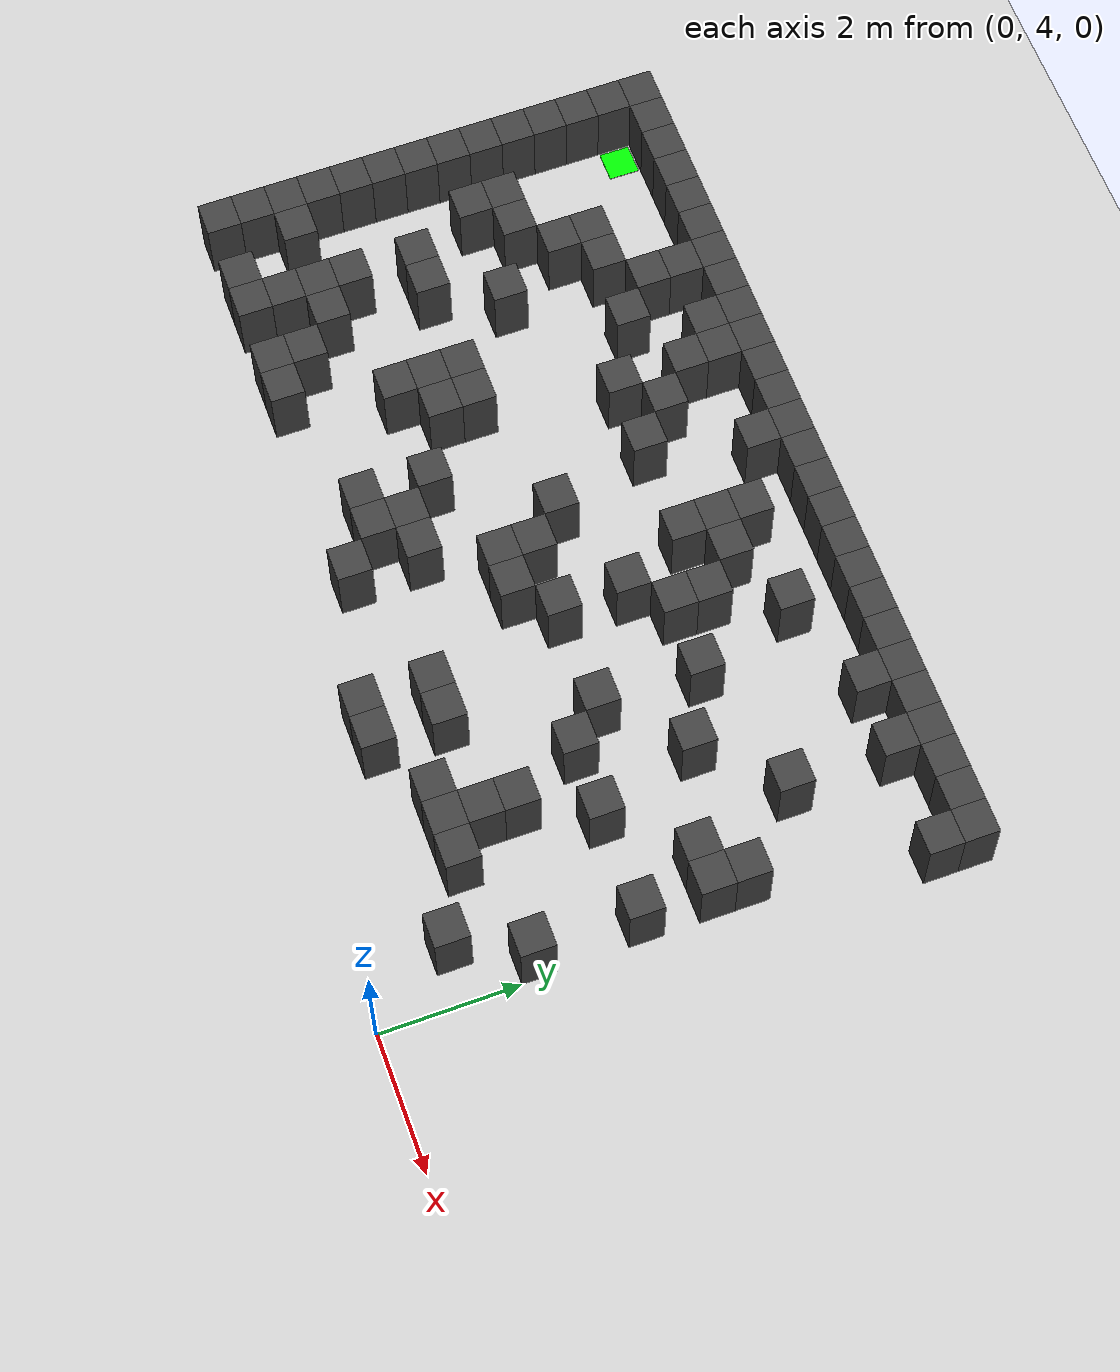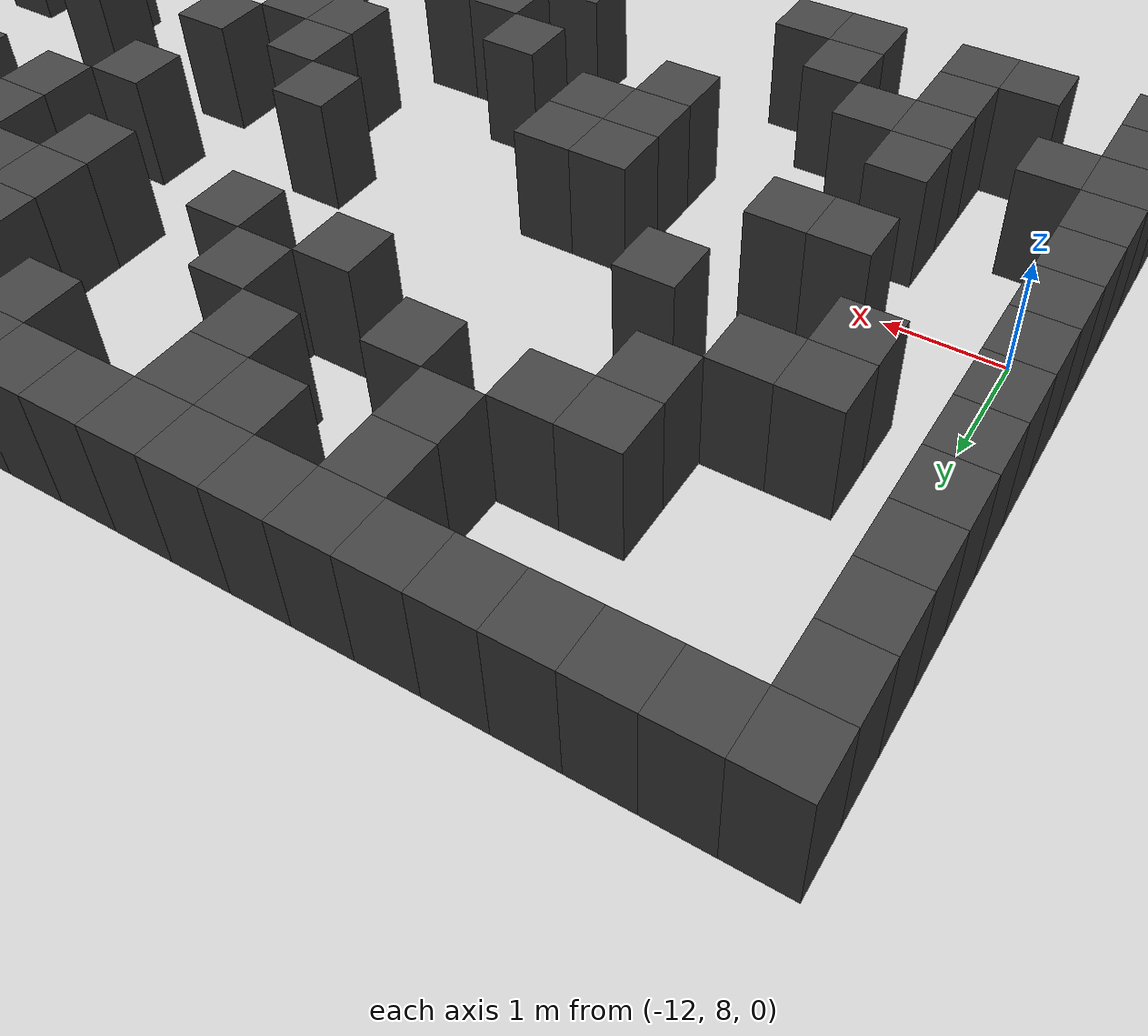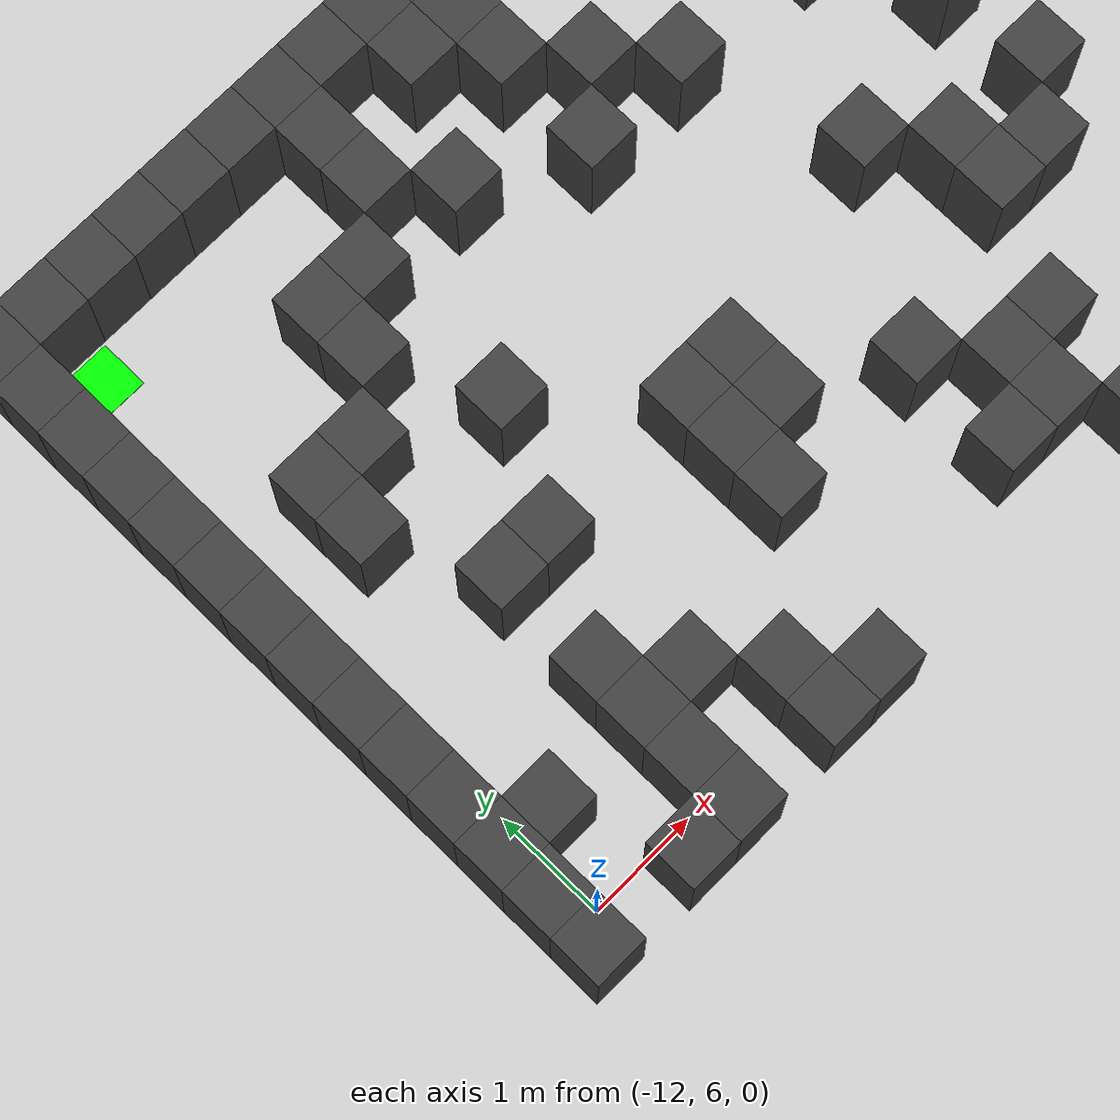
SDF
<sdf version="1.7">
 <world name="map_4581">
  <model name="ground_plane">
   <static>true</static>
   <link name="link">
    <collision name="collision">
     <geometry><plane><normal>0 0 1</normal><size>200 200</size></plane></geometry>
    </collision>
    <visual name="visual">
     <geometry><plane><normal>0 0 1</normal><size>200 200</size></plane></geometry>
     <material><ambient>0.8 0.8 0.8 1</ambient><diffuse>0.8 0.8 0.8 1</diffuse></material>
    </visual>
   </link>
  </model>
  <model name="maze_environment">
   <static>true</static>
   <link name="wall_0">
    <pose>-12.250 12.250 0.500 0 0 0</pose>
    <collision name="col"><geometry><box><size>0.5 0.5 1.0</size></box></geometry></collision>
    <visual name="vis">
     <geometry><box><size>0.5 0.5 1.0</size></box></geometry>
     <material><ambient>0.15 0.15 0.15 1</ambient><diffuse>0.25 0.25 0.25 1</diffuse></material>
    </visual>
   </link>
   <link name="wall_1">
    <pose>-11.750 12.250 0.500 0 0 0</pose>
    <collision name="col"><geometry><box><size>0.5 0.5 1.0</size></box></geometry></collision>
    <visual name="vis">
     <geometry><box><size>0.5 0.5 1.0</size></box></geometry>
     <material><ambient>0.15 0.15 0.15 1</ambient><diffuse>0.25 0.25 0.25 1</diffuse></material>
    </visual>
   </link>
   <link name="wall_2">
    <pose>-11.250 12.250 0.500 0 0 0</pose>
    <collision name="col"><geometry><box><size>0.5 0.5 1.0</size></box></geometry></collision>
    <visual name="vis">
     <geometry><box><size>0.5 0.5 1.0</size></box></geometry>
     <material><ambient>0.15 0.15 0.15 1</ambient><diffuse>0.25 0.25 0.25 1</diffuse></material>
    </visual>
   </link>
   <link name="wall_3">
    <pose>-10.750 12.250 0.500 0 0 0</pose>
    <collision name="col"><geometry><box><size>0.5 0.5 1.0</size></box></geometry></collision>
    <visual name="vis">
     <geometry><box><size>0.5 0.5 1.0</size></box></geometry>
     <material><ambient>0.15 0.15 0.15 1</ambient><diffuse>0.25 0.25 0.25 1</diffuse></material>
    </visual>
   </link>
   <link name="wall_4">
    <pose>-10.250 12.250 0.500 0 0 0</pose>
    <collision name="col"><geometry><box><size>0.5 0.5 1.0</size></box></geometry></collision>
    <visual name="vis">
     <geometry><box><size>0.5 0.5 1.0</size></box></geometry>
     <material><ambient>0.15 0.15 0.15 1</ambient><diffuse>0.25 0.25 0.25 1</diffuse></material>
    </visual>
   </link>
   <link name="wall_5">
    <pose>-9.750 12.250 0.500 0 0 0</pose>
    <collision name="col"><geometry><box><size>0.5 0.5 1.0</size></box></geometry></collision>
    <visual name="vis">
     <geometry><box><size>0.5 0.5 1.0</size></box></geometry>
     <material><ambient>0.15 0.15 0.15 1</ambient><diffuse>0.25 0.25 0.25 1</diffuse></material>
    </visual>
   </link>
   <link name="wall_6">
    <pose>-9.250 12.250 0.500 0 0 0</pose>
    <collision name="col"><geometry><box><size>0.5 0.5 1.0</size></box></geometry></collision>
    <visual name="vis">
     <geometry><box><size>0.5 0.5 1.0</size></box></geometry>
     <material><ambient>0.15 0.15 0.15 1</ambient><diffuse>0.25 0.25 0.25 1</diffuse></material>
    </visual>
   </link>
   <link name="wall_7">
    <pose>-8.750 12.250 0.500 0 0 0</pose>
    <collision name="col"><geometry><box><size>0.5 0.5 1.0</size></box></geometry></collision>
    <visual name="vis">
     <geometry><box><size>0.5 0.5 1.0</size></box></geometry>
     <material><ambient>0.15 0.15 0.15 1</ambient><diffuse>0.25 0.25 0.25 1</diffuse></material>
    </visual>
   </link>
   <link name="wall_8">
    <pose>-8.250 12.250 0.500 0 0 0</pose>
    <collision name="col"><geometry><box><size>0.5 0.5 1.0</size></box></geometry></collision>
    <visual name="vis">
     <geometry><box><size>0.5 0.5 1.0</size></box></geometry>
     <material><ambient>0.15 0.15 0.15 1</ambient><diffuse>0.25 0.25 0.25 1</diffuse></material>
    </visual>
   </link>
   <link name="wall_9">
    <pose>-7.750 12.250 0.500 0 0 0</pose>
    <collision name="col"><geometry><box><size>0.5 0.5 1.0</size></box></geometry></collision>
    <visual name="vis">
     <geometry><box><size>0.5 0.5 1.0</size></box></geometry>
     <material><ambient>0.15 0.15 0.15 1</ambient><diffuse>0.25 0.25 0.25 1</diffuse></material>
    </visual>
   </link>
   <link name="wall_10">
    <pose>-7.250 12.250 0.500 0 0 0</pose>
    <collision name="col"><geometry><box><size>0.5 0.5 1.0</size></box></geometry></collision>
    <visual name="vis">
     <geometry><box><size>0.5 0.5 1.0</size></box></geometry>
     <material><ambient>0.15 0.15 0.15 1</ambient><diffuse>0.25 0.25 0.25 1</diffuse></material>
    </visual>
   </link>
   <link name="wall_11">
    <pose>-6.750 12.250 0.500 0 0 0</pose>
    <collision name="col"><geometry><box><size>0.5 0.5 1.0</size></box></geometry></collision>
    <visual name="vis">
     <geometry><box><size>0.5 0.5 1.0</size></box></geometry>
     <material><ambient>0.15 0.15 0.15 1</ambient><diffuse>0.25 0.25 0.25 1</diffuse></material>
    </visual>
   </link>
   <link name="wall_12">
    <pose>-6.250 12.250 0.500 0 0 0</pose>
    <collision name="col"><geometry><box><size>0.5 0.5 1.0</size></box></geometry></collision>
    <visual name="vis">
     <geometry><box><size>0.5 0.5 1.0</size></box></geometry>
     <material><ambient>0.15 0.15 0.15 1</ambient><diffuse>0.25 0.25 0.25 1</diffuse></material>
    </visual>
   </link>
   <link name="wall_13">
    <pose>-5.750 12.250 0.500 0 0 0</pose>
    <collision name="col"><geometry><box><size>0.5 0.5 1.0</size></box></geometry></collision>
    <visual name="vis">
     <geometry><box><size>0.5 0.5 1.0</size></box></geometry>
     <material><ambient>0.15 0.15 0.15 1</ambient><diffuse>0.25 0.25 0.25 1</diffuse></material>
    </visual>
   </link>
   <link name="wall_14">
    <pose>-5.250 12.250 0.500 0 0 0</pose>
    <collision name="col"><geometry><box><size>0.5 0.5 1.0</size></box></geometry></collision>
    <visual name="vis">
     <geometry><box><size>0.5 0.5 1.0</size></box></geometry>
     <material><ambient>0.15 0.15 0.15 1</ambient><diffuse>0.25 0.25 0.25 1</diffuse></material>
    </visual>
   </link>
   <link name="wall_15">
    <pose>-4.750 12.250 0.500 0 0 0</pose>
    <collision name="col"><geometry><box><size>0.5 0.5 1.0</size></box></geometry></collision>
    <visual name="vis">
     <geometry><box><size>0.5 0.5 1.0</size></box></geometry>
     <material><ambient>0.15 0.15 0.15 1</ambient><diffuse>0.25 0.25 0.25 1</diffuse></material>
    </visual>
   </link>
   <link name="wall_16">
    <pose>-4.250 12.250 0.500 0 0 0</pose>
    <collision name="col"><geometry><box><size>0.5 0.5 1.0</size></box></geometry></collision>
    <visual name="vis">
     <geometry><box><size>0.5 0.5 1.0</size></box></geometry>
     <material><ambient>0.15 0.15 0.15 1</ambient><diffuse>0.25 0.25 0.25 1</diffuse></material>
    </visual>
   </link>
   <link name="wall_17">
    <pose>-3.750 12.250 0.500 0 0 0</pose>
    <collision name="col"><geometry><box><size>0.5 0.5 1.0</size></box></geometry></collision>
    <visual name="vis">
     <geometry><box><size>0.5 0.5 1.0</size></box></geometry>
     <material><ambient>0.15 0.15 0.15 1</ambient><diffuse>0.25 0.25 0.25 1</diffuse></material>
    </visual>
   </link>
   <link name="wall_18">
    <pose>-3.250 12.250 0.500 0 0 0</pose>
    <collision name="col"><geometry><box><size>0.5 0.5 1.0</size></box></geometry></collision>
    <visual name="vis">
     <geometry><box><size>0.5 0.5 1.0</size></box></geometry>
     <material><ambient>0.15 0.15 0.15 1</ambient><diffuse>0.25 0.25 0.25 1</diffuse></material>
    </visual>
   </link>
   <link name="wall_19">
    <pose>-2.750 12.250 0.500 0 0 0</pose>
    <collision name="col"><geometry><box><size>0.5 0.5 1.0</size></box></geometry></collision>
    <visual name="vis">
     <geometry><box><size>0.5 0.5 1.0</size></box></geometry>
     <material><ambient>0.15 0.15 0.15 1</ambient><diffuse>0.25 0.25 0.25 1</diffuse></material>
    </visual>
   </link>
   <link name="wall_20">
    <pose>-2.250 12.250 0.500 0 0 0</pose>
    <collision name="col"><geometry><box><size>0.5 0.5 1.0</size></box></geometry></collision>
    <visual name="vis">
     <geometry><box><size>0.5 0.5 1.0</size></box></geometry>
     <material><ambient>0.15 0.15 0.15 1</ambient><diffuse>0.25 0.25 0.25 1</diffuse></material>
    </visual>
   </link>
   <link name="wall_21">
    <pose>-1.750 12.250 0.500 0 0 0</pose>
    <collision name="col"><geometry><box><size>0.5 0.5 1.0</size></box></geometry></collision>
    <visual name="vis">
     <geometry><box><size>0.5 0.5 1.0</size></box></geometry>
     <material><ambient>0.15 0.15 0.15 1</ambient><diffuse>0.25 0.25 0.25 1</diffuse></material>
    </visual>
   </link>
   <link name="wall_22">
    <pose>-1.250 12.250 0.500 0 0 0</pose>
    <collision name="col"><geometry><box><size>0.5 0.5 1.0</size></box></geometry></collision>
    <visual name="vis">
     <geometry><box><size>0.5 0.5 1.0</size></box></geometry>
     <material><ambient>0.15 0.15 0.15 1</ambient><diffuse>0.25 0.25 0.25 1</diffuse></material>
    </visual>
   </link>
   <link name="wall_23">
    <pose>-0.750 12.250 0.500 0 0 0</pose>
    <collision name="col"><geometry><box><size>0.5 0.5 1.0</size></box></geometry></collision>
    <visual name="vis">
     <geometry><box><size>0.5 0.5 1.0</size></box></geometry>
     <material><ambient>0.15 0.15 0.15 1</ambient><diffuse>0.25 0.25 0.25 1</diffuse></material>
    </visual>
   </link>
   <link name="wall_24">
    <pose>-0.250 12.250 0.500 0 0 0</pose>
    <collision name="col"><geometry><box><size>0.5 0.5 1.0</size></box></geometry></collision>
    <visual name="vis">
     <geometry><box><size>0.5 0.5 1.0</size></box></geometry>
     <material><ambient>0.15 0.15 0.15 1</ambient><diffuse>0.25 0.25 0.25 1</diffuse></material>
    </visual>
   </link>
   <link name="wall_25">
    <pose>0.250 12.250 0.500 0 0 0</pose>
    <collision name="col"><geometry><box><size>0.5 0.5 1.0</size></box></geometry></collision>
    <visual name="vis">
     <geometry><box><size>0.5 0.5 1.0</size></box></geometry>
     <material><ambient>0.15 0.15 0.15 1</ambient><diffuse>0.25 0.25 0.25 1</diffuse></material>
    </visual>
   </link>
   <link name="wall_50">
    <pose>-12.250 11.750 0.500 0 0 0</pose>
    <collision name="col"><geometry><box><size>0.5 0.5 1.0</size></box></geometry></collision>
    <visual name="vis">
     <geometry><box><size>0.5 0.5 1.0</size></box></geometry>
     <material><ambient>0.15 0.15 0.15 1</ambient><diffuse>0.25 0.25 0.25 1</diffuse></material>
    </visual>
   </link>
   <link name="wall_51">
    <pose>-9.250 11.750 0.500 0 0 0</pose>
    <collision name="col"><geometry><box><size>0.5 0.5 1.0</size></box></geometry></collision>
    <visual name="vis">
     <geometry><box><size>0.5 0.5 1.0</size></box></geometry>
     <material><ambient>0.15 0.15 0.15 1</ambient><diffuse>0.25 0.25 0.25 1</diffuse></material>
    </visual>
   </link>
   <link name="wall_52">
    <pose>-8.250 11.750 0.500 0 0 0</pose>
    <collision name="col"><geometry><box><size>0.5 0.5 1.0</size></box></geometry></collision>
    <visual name="vis">
     <geometry><box><size>0.5 0.5 1.0</size></box></geometry>
     <material><ambient>0.15 0.15 0.15 1</ambient><diffuse>0.25 0.25 0.25 1</diffuse></material>
    </visual>
   </link>
   <link name="wall_53">
    <pose>-7.750 11.750 0.500 0 0 0</pose>
    <collision name="col"><geometry><box><size>0.5 0.5 1.0</size></box></geometry></collision>
    <visual name="vis">
     <geometry><box><size>0.5 0.5 1.0</size></box></geometry>
     <material><ambient>0.15 0.15 0.15 1</ambient><diffuse>0.25 0.25 0.25 1</diffuse></material>
    </visual>
   </link>
   <link name="wall_54">
    <pose>-6.250 11.750 0.500 0 0 0</pose>
    <collision name="col"><geometry><box><size>0.5 0.5 1.0</size></box></geometry></collision>
    <visual name="vis">
     <geometry><box><size>0.5 0.5 1.0</size></box></geometry>
     <material><ambient>0.15 0.15 0.15 1</ambient><diffuse>0.25 0.25 0.25 1</diffuse></material>
    </visual>
   </link>
   <link name="wall_55">
    <pose>-2.250 11.750 0.500 0 0 0</pose>
    <collision name="col"><geometry><box><size>0.5 0.5 1.0</size></box></geometry></collision>
    <visual name="vis">
     <geometry><box><size>0.5 0.5 1.0</size></box></geometry>
     <material><ambient>0.15 0.15 0.15 1</ambient><diffuse>0.25 0.25 0.25 1</diffuse></material>
    </visual>
   </link>
   <link name="wall_56">
    <pose>-1.250 11.750 0.500 0 0 0</pose>
    <collision name="col"><geometry><box><size>0.5 0.5 1.0</size></box></geometry></collision>
    <visual name="vis">
     <geometry><box><size>0.5 0.5 1.0</size></box></geometry>
     <material><ambient>0.15 0.15 0.15 1</ambient><diffuse>0.25 0.25 0.25 1</diffuse></material>
    </visual>
   </link>
   <link name="wall_57">
    <pose>0.250 11.750 0.500 0 0 0</pose>
    <collision name="col"><geometry><box><size>0.5 0.5 1.0</size></box></geometry></collision>
    <visual name="vis">
     <geometry><box><size>0.5 0.5 1.0</size></box></geometry>
     <material><ambient>0.15 0.15 0.15 1</ambient><diffuse>0.25 0.25 0.25 1</diffuse></material>
    </visual>
   </link>
   <link name="wall_64">
    <pose>-12.250 11.250 0.500 0 0 0</pose>
    <collision name="col"><geometry><box><size>0.5 0.5 1.0</size></box></geometry></collision>
    <visual name="vis">
     <geometry><box><size>0.5 0.5 1.0</size></box></geometry>
     <material><ambient>0.15 0.15 0.15 1</ambient><diffuse>0.25 0.25 0.25 1</diffuse></material>
    </visual>
   </link>
   <link name="wall_65">
    <pose>-9.250 11.250 0.500 0 0 0</pose>
    <collision name="col"><geometry><box><size>0.5 0.5 1.0</size></box></geometry></collision>
    <visual name="vis">
     <geometry><box><size>0.5 0.5 1.0</size></box></geometry>
     <material><ambient>0.15 0.15 0.15 1</ambient><diffuse>0.25 0.25 0.25 1</diffuse></material>
    </visual>
   </link>
   <link name="wall_66">
    <pose>-7.750 11.250 0.500 0 0 0</pose>
    <collision name="col"><geometry><box><size>0.5 0.5 1.0</size></box></geometry></collision>
    <visual name="vis">
     <geometry><box><size>0.5 0.5 1.0</size></box></geometry>
     <material><ambient>0.15 0.15 0.15 1</ambient><diffuse>0.25 0.25 0.25 1</diffuse></material>
    </visual>
   </link>
   <link name="wall_67">
    <pose>-5.250 11.250 0.500 0 0 0</pose>
    <collision name="col"><geometry><box><size>0.5 0.5 1.0</size></box></geometry></collision>
    <visual name="vis">
     <geometry><box><size>0.5 0.5 1.0</size></box></geometry>
     <material><ambient>0.15 0.15 0.15 1</ambient><diffuse>0.25 0.25 0.25 1</diffuse></material>
    </visual>
   </link>
   <link name="wall_68">
    <pose>-3.750 11.250 0.500 0 0 0</pose>
    <collision name="col"><geometry><box><size>0.5 0.5 1.0</size></box></geometry></collision>
    <visual name="vis">
     <geometry><box><size>0.5 0.5 1.0</size></box></geometry>
     <material><ambient>0.15 0.15 0.15 1</ambient><diffuse>0.25 0.25 0.25 1</diffuse></material>
    </visual>
   </link>
   <link name="wall_76">
    <pose>-12.250 10.750 0.500 0 0 0</pose>
    <collision name="col"><geometry><box><size>0.5 0.5 1.0</size></box></geometry></collision>
    <visual name="vis">
     <geometry><box><size>0.5 0.5 1.0</size></box></geometry>
     <material><ambient>0.15 0.15 0.15 1</ambient><diffuse>0.25 0.25 0.25 1</diffuse></material>
    </visual>
   </link>
   <link name="wall_77">
    <pose>-10.250 10.750 0.500 0 0 0</pose>
    <collision name="col"><geometry><box><size>0.5 0.5 1.0</size></box></geometry></collision>
    <visual name="vis">
     <geometry><box><size>0.5 0.5 1.0</size></box></geometry>
     <material><ambient>0.15 0.15 0.15 1</ambient><diffuse>0.25 0.25 0.25 1</diffuse></material>
    </visual>
   </link>
   <link name="wall_78">
    <pose>-9.750 10.750 0.500 0 0 0</pose>
    <collision name="col"><geometry><box><size>0.5 0.5 1.0</size></box></geometry></collision>
    <visual name="vis">
     <geometry><box><size>0.5 0.5 1.0</size></box></geometry>
     <material><ambient>0.15 0.15 0.15 1</ambient><diffuse>0.25 0.25 0.25 1</diffuse></material>
    </visual>
   </link>
   <link name="wall_79">
    <pose>-8.750 10.750 0.500 0 0 0</pose>
    <collision name="col"><geometry><box><size>0.5 0.5 1.0</size></box></geometry></collision>
    <visual name="vis">
     <geometry><box><size>0.5 0.5 1.0</size></box></geometry>
     <material><ambient>0.15 0.15 0.15 1</ambient><diffuse>0.25 0.25 0.25 1</diffuse></material>
    </visual>
   </link>
   <link name="wall_80">
    <pose>-7.250 10.750 0.500 0 0 0</pose>
    <collision name="col"><geometry><box><size>0.5 0.5 1.0</size></box></geometry></collision>
    <visual name="vis">
     <geometry><box><size>0.5 0.5 1.0</size></box></geometry>
     <material><ambient>0.15 0.15 0.15 1</ambient><diffuse>0.25 0.25 0.25 1</diffuse></material>
    </visual>
   </link>
   <link name="wall_81">
    <pose>-5.250 10.750 0.500 0 0 0</pose>
    <collision name="col"><geometry><box><size>0.5 0.5 1.0</size></box></geometry></collision>
    <visual name="vis">
     <geometry><box><size>0.5 0.5 1.0</size></box></geometry>
     <material><ambient>0.15 0.15 0.15 1</ambient><diffuse>0.25 0.25 0.25 1</diffuse></material>
    </visual>
   </link>
   <link name="wall_82">
    <pose>-4.750 10.750 0.500 0 0 0</pose>
    <collision name="col"><geometry><box><size>0.5 0.5 1.0</size></box></geometry></collision>
    <visual name="vis">
     <geometry><box><size>0.5 0.5 1.0</size></box></geometry>
     <material><ambient>0.15 0.15 0.15 1</ambient><diffuse>0.25 0.25 0.25 1</diffuse></material>
    </visual>
   </link>
   <link name="wall_86">
    <pose>-12.250 10.250 0.500 0 0 0</pose>
    <collision name="col"><geometry><box><size>0.5 0.5 1.0</size></box></geometry></collision>
    <visual name="vis">
     <geometry><box><size>0.5 0.5 1.0</size></box></geometry>
     <material><ambient>0.15 0.15 0.15 1</ambient><diffuse>0.25 0.25 0.25 1</diffuse></material>
    </visual>
   </link>
   <link name="wall_87">
    <pose>-10.250 10.250 0.500 0 0 0</pose>
    <collision name="col"><geometry><box><size>0.5 0.5 1.0</size></box></geometry></collision>
    <visual name="vis">
     <geometry><box><size>0.5 0.5 1.0</size></box></geometry>
     <material><ambient>0.15 0.15 0.15 1</ambient><diffuse>0.25 0.25 0.25 1</diffuse></material>
    </visual>
   </link>
   <link name="wall_88">
    <pose>-7.750 10.250 0.500 0 0 0</pose>
    <collision name="col"><geometry><box><size>0.5 0.5 1.0</size></box></geometry></collision>
    <visual name="vis">
     <geometry><box><size>0.5 0.5 1.0</size></box></geometry>
     <material><ambient>0.15 0.15 0.15 1</ambient><diffuse>0.25 0.25 0.25 1</diffuse></material>
    </visual>
   </link>
   <link name="wall_89">
    <pose>-6.750 10.250 0.500 0 0 0</pose>
    <collision name="col"><geometry><box><size>0.5 0.5 1.0</size></box></geometry></collision>
    <visual name="vis">
     <geometry><box><size>0.5 0.5 1.0</size></box></geometry>
     <material><ambient>0.15 0.15 0.15 1</ambient><diffuse>0.25 0.25 0.25 1</diffuse></material>
    </visual>
   </link>
   <link name="wall_90">
    <pose>-5.250 10.250 0.500 0 0 0</pose>
    <collision name="col"><geometry><box><size>0.5 0.5 1.0</size></box></geometry></collision>
    <visual name="vis">
     <geometry><box><size>0.5 0.5 1.0</size></box></geometry>
     <material><ambient>0.15 0.15 0.15 1</ambient><diffuse>0.25 0.25 0.25 1</diffuse></material>
    </visual>
   </link>
   <link name="wall_91">
    <pose>-4.250 10.250 0.500 0 0 0</pose>
    <collision name="col"><geometry><box><size>0.5 0.5 1.0</size></box></geometry></collision>
    <visual name="vis">
     <geometry><box><size>0.5 0.5 1.0</size></box></geometry>
     <material><ambient>0.15 0.15 0.15 1</ambient><diffuse>0.25 0.25 0.25 1</diffuse></material>
    </visual>
   </link>
   <link name="wall_92">
    <pose>-1.250 10.250 0.500 0 0 0</pose>
    <collision name="col"><geometry><box><size>0.5 0.5 1.0</size></box></geometry></collision>
    <visual name="vis">
     <geometry><box><size>0.5 0.5 1.0</size></box></geometry>
     <material><ambient>0.15 0.15 0.15 1</ambient><diffuse>0.25 0.25 0.25 1</diffuse></material>
    </visual>
   </link>
   <link name="wall_98">
    <pose>-12.250 9.750 0.500 0 0 0</pose>
    <collision name="col"><geometry><box><size>0.5 0.5 1.0</size></box></geometry></collision>
    <visual name="vis">
     <geometry><box><size>0.5 0.5 1.0</size></box></geometry>
     <material><ambient>0.15 0.15 0.15 1</ambient><diffuse>0.25 0.25 0.25 1</diffuse></material>
    </visual>
   </link>
   <link name="wall_99">
    <pose>-11.250 9.750 0.500 0 0 0</pose>
    <collision name="col"><geometry><box><size>0.5 0.5 1.0</size></box></geometry></collision>
    <visual name="vis">
     <geometry><box><size>0.5 0.5 1.0</size></box></geometry>
     <material><ambient>0.15 0.15 0.15 1</ambient><diffuse>0.25 0.25 0.25 1</diffuse></material>
    </visual>
   </link>
   <link name="wall_100">
    <pose>-10.750 9.750 0.500 0 0 0</pose>
    <collision name="col"><geometry><box><size>0.5 0.5 1.0</size></box></geometry></collision>
    <visual name="vis">
     <geometry><box><size>0.5 0.5 1.0</size></box></geometry>
     <material><ambient>0.15 0.15 0.15 1</ambient><diffuse>0.25 0.25 0.25 1</diffuse></material>
    </visual>
   </link>
   <link name="wall_101">
    <pose>-4.250 9.750 0.500 0 0 0</pose>
    <collision name="col"><geometry><box><size>0.5 0.5 1.0</size></box></geometry></collision>
    <visual name="vis">
     <geometry><box><size>0.5 0.5 1.0</size></box></geometry>
     <material><ambient>0.15 0.15 0.15 1</ambient><diffuse>0.25 0.25 0.25 1</diffuse></material>
    </visual>
   </link>
   <link name="wall_102">
    <pose>-3.250 9.750 0.500 0 0 0</pose>
    <collision name="col"><geometry><box><size>0.5 0.5 1.0</size></box></geometry></collision>
    <visual name="vis">
     <geometry><box><size>0.5 0.5 1.0</size></box></geometry>
     <material><ambient>0.15 0.15 0.15 1</ambient><diffuse>0.25 0.25 0.25 1</diffuse></material>
    </visual>
   </link>
   <link name="wall_108">
    <pose>-12.250 9.250 0.500 0 0 0</pose>
    <collision name="col"><geometry><box><size>0.5 0.5 1.0</size></box></geometry></collision>
    <visual name="vis">
     <geometry><box><size>0.5 0.5 1.0</size></box></geometry>
     <material><ambient>0.15 0.15 0.15 1</ambient><diffuse>0.25 0.25 0.25 1</diffuse></material>
    </visual>
   </link>
   <link name="wall_109">
    <pose>-11.250 9.250 0.500 0 0 0</pose>
    <collision name="col"><geometry><box><size>0.5 0.5 1.0</size></box></geometry></collision>
    <visual name="vis">
     <geometry><box><size>0.5 0.5 1.0</size></box></geometry>
     <material><ambient>0.15 0.15 0.15 1</ambient><diffuse>0.25 0.25 0.25 1</diffuse></material>
    </visual>
   </link>
   <link name="wall_110">
    <pose>-9.750 9.250 0.500 0 0 0</pose>
    <collision name="col"><geometry><box><size>0.5 0.5 1.0</size></box></geometry></collision>
    <visual name="vis">
     <geometry><box><size>0.5 0.5 1.0</size></box></geometry>
     <material><ambient>0.15 0.15 0.15 1</ambient><diffuse>0.25 0.25 0.25 1</diffuse></material>
    </visual>
   </link>
   <link name="wall_111">
    <pose>-4.750 9.250 0.500 0 0 0</pose>
    <collision name="col"><geometry><box><size>0.5 0.5 1.0</size></box></geometry></collision>
    <visual name="vis">
     <geometry><box><size>0.5 0.5 1.0</size></box></geometry>
     <material><ambient>0.15 0.15 0.15 1</ambient><diffuse>0.25 0.25 0.25 1</diffuse></material>
    </visual>
   </link>
   <link name="wall_112">
    <pose>-2.250 9.250 0.500 0 0 0</pose>
    <collision name="col"><geometry><box><size>0.5 0.5 1.0</size></box></geometry></collision>
    <visual name="vis">
     <geometry><box><size>0.5 0.5 1.0</size></box></geometry>
     <material><ambient>0.15 0.15 0.15 1</ambient><diffuse>0.25 0.25 0.25 1</diffuse></material>
    </visual>
   </link>
   <link name="wall_113">
    <pose>-0.250 9.250 0.500 0 0 0</pose>
    <collision name="col"><geometry><box><size>0.5 0.5 1.0</size></box></geometry></collision>
    <visual name="vis">
     <geometry><box><size>0.5 0.5 1.0</size></box></geometry>
     <material><ambient>0.15 0.15 0.15 1</ambient><diffuse>0.25 0.25 0.25 1</diffuse></material>
    </visual>
   </link>
   <link name="wall_121">
    <pose>-12.250 8.750 0.500 0 0 0</pose>
    <collision name="col"><geometry><box><size>0.5 0.5 1.0</size></box></geometry></collision>
    <visual name="vis">
     <geometry><box><size>0.5 0.5 1.0</size></box></geometry>
     <material><ambient>0.15 0.15 0.15 1</ambient><diffuse>0.25 0.25 0.25 1</diffuse></material>
    </visual>
   </link>
   <link name="wall_122">
    <pose>-6.250 8.750 0.500 0 0 0</pose>
    <collision name="col"><geometry><box><size>0.5 0.5 1.0</size></box></geometry></collision>
    <visual name="vis">
     <geometry><box><size>0.5 0.5 1.0</size></box></geometry>
     <material><ambient>0.15 0.15 0.15 1</ambient><diffuse>0.25 0.25 0.25 1</diffuse></material>
    </visual>
   </link>
   <link name="wall_123">
    <pose>-0.750 8.750 0.500 0 0 0</pose>
    <collision name="col"><geometry><box><size>0.5 0.5 1.0</size></box></geometry></collision>
    <visual name="vis">
     <geometry><box><size>0.5 0.5 1.0</size></box></geometry>
     <material><ambient>0.15 0.15 0.15 1</ambient><diffuse>0.25 0.25 0.25 1</diffuse></material>
    </visual>
   </link>
   <link name="wall_124">
    <pose>-0.250 8.750 0.500 0 0 0</pose>
    <collision name="col"><geometry><box><size>0.5 0.5 1.0</size></box></geometry></collision>
    <visual name="vis">
     <geometry><box><size>0.5 0.5 1.0</size></box></geometry>
     <material><ambient>0.15 0.15 0.15 1</ambient><diffuse>0.25 0.25 0.25 1</diffuse></material>
    </visual>
   </link>
   <link name="wall_131">
    <pose>-12.250 8.250 0.500 0 0 0</pose>
    <collision name="col"><geometry><box><size>0.5 0.5 1.0</size></box></geometry></collision>
    <visual name="vis">
     <geometry><box><size>0.5 0.5 1.0</size></box></geometry>
     <material><ambient>0.15 0.15 0.15 1</ambient><diffuse>0.25 0.25 0.25 1</diffuse></material>
    </visual>
   </link>
   <link name="wall_132">
    <pose>-10.750 8.250 0.500 0 0 0</pose>
    <collision name="col"><geometry><box><size>0.5 0.5 1.0</size></box></geometry></collision>
    <visual name="vis">
     <geometry><box><size>0.5 0.5 1.0</size></box></geometry>
     <material><ambient>0.15 0.15 0.15 1</ambient><diffuse>0.25 0.25 0.25 1</diffuse></material>
    </visual>
   </link>
   <link name="wall_133">
    <pose>-10.250 8.250 0.500 0 0 0</pose>
    <collision name="col"><geometry><box><size>0.5 0.5 1.0</size></box></geometry></collision>
    <visual name="vis">
     <geometry><box><size>0.5 0.5 1.0</size></box></geometry>
     <material><ambient>0.15 0.15 0.15 1</ambient><diffuse>0.25 0.25 0.25 1</diffuse></material>
    </visual>
   </link>
   <link name="wall_134">
    <pose>-8.750 8.250 0.500 0 0 0</pose>
    <collision name="col"><geometry><box><size>0.5 0.5 1.0</size></box></geometry></collision>
    <visual name="vis">
     <geometry><box><size>0.5 0.5 1.0</size></box></geometry>
     <material><ambient>0.15 0.15 0.15 1</ambient><diffuse>0.25 0.25 0.25 1</diffuse></material>
    </visual>
   </link>
   <link name="wall_135">
    <pose>-8.250 8.250 0.500 0 0 0</pose>
    <collision name="col"><geometry><box><size>0.5 0.5 1.0</size></box></geometry></collision>
    <visual name="vis">
     <geometry><box><size>0.5 0.5 1.0</size></box></geometry>
     <material><ambient>0.15 0.15 0.15 1</ambient><diffuse>0.25 0.25 0.25 1</diffuse></material>
    </visual>
   </link>
   <link name="wall_136">
    <pose>-5.750 8.250 0.500 0 0 0</pose>
    <collision name="col"><geometry><box><size>0.5 0.5 1.0</size></box></geometry></collision>
    <visual name="vis">
     <geometry><box><size>0.5 0.5 1.0</size></box></geometry>
     <material><ambient>0.15 0.15 0.15 1</ambient><diffuse>0.25 0.25 0.25 1</diffuse></material>
    </visual>
   </link>
   <link name="wall_137">
    <pose>-4.750 8.250 0.500 0 0 0</pose>
    <collision name="col"><geometry><box><size>0.5 0.5 1.0</size></box></geometry></collision>
    <visual name="vis">
     <geometry><box><size>0.5 0.5 1.0</size></box></geometry>
     <material><ambient>0.15 0.15 0.15 1</ambient><diffuse>0.25 0.25 0.25 1</diffuse></material>
    </visual>
   </link>
   <link name="wall_138">
    <pose>-3.250 8.250 0.500 0 0 0</pose>
    <collision name="col"><geometry><box><size>0.5 0.5 1.0</size></box></geometry></collision>
    <visual name="vis">
     <geometry><box><size>0.5 0.5 1.0</size></box></geometry>
     <material><ambient>0.15 0.15 0.15 1</ambient><diffuse>0.25 0.25 0.25 1</diffuse></material>
    </visual>
   </link>
   <link name="wall_144">
    <pose>-12.250 7.750 0.500 0 0 0</pose>
    <collision name="col"><geometry><box><size>0.5 0.5 1.0</size></box></geometry></collision>
    <visual name="vis">
     <geometry><box><size>0.5 0.5 1.0</size></box></geometry>
     <material><ambient>0.15 0.15 0.15 1</ambient><diffuse>0.25 0.25 0.25 1</diffuse></material>
    </visual>
   </link>
   <link name="wall_145">
    <pose>-8.750 7.750 0.500 0 0 0</pose>
    <collision name="col"><geometry><box><size>0.5 0.5 1.0</size></box></geometry></collision>
    <visual name="vis">
     <geometry><box><size>0.5 0.5 1.0</size></box></geometry>
     <material><ambient>0.15 0.15 0.15 1</ambient><diffuse>0.25 0.25 0.25 1</diffuse></material>
    </visual>
   </link>
   <link name="wall_146">
    <pose>-8.250 7.750 0.500 0 0 0</pose>
    <collision name="col"><geometry><box><size>0.5 0.5 1.0</size></box></geometry></collision>
    <visual name="vis">
     <geometry><box><size>0.5 0.5 1.0</size></box></geometry>
     <material><ambient>0.15 0.15 0.15 1</ambient><diffuse>0.25 0.25 0.25 1</diffuse></material>
    </visual>
   </link>
   <link name="wall_147">
    <pose>-5.750 7.750 0.500 0 0 0</pose>
    <collision name="col"><geometry><box><size>0.5 0.5 1.0</size></box></geometry></collision>
    <visual name="vis">
     <geometry><box><size>0.5 0.5 1.0</size></box></geometry>
     <material><ambient>0.15 0.15 0.15 1</ambient><diffuse>0.25 0.25 0.25 1</diffuse></material>
    </visual>
   </link>
   <link name="wall_148">
    <pose>-5.250 7.750 0.500 0 0 0</pose>
    <collision name="col"><geometry><box><size>0.5 0.5 1.0</size></box></geometry></collision>
    <visual name="vis">
     <geometry><box><size>0.5 0.5 1.0</size></box></geometry>
     <material><ambient>0.15 0.15 0.15 1</ambient><diffuse>0.25 0.25 0.25 1</diffuse></material>
    </visual>
   </link>
   <link name="wall_149">
    <pose>-2.750 7.750 0.500 0 0 0</pose>
    <collision name="col"><geometry><box><size>0.5 0.5 1.0</size></box></geometry></collision>
    <visual name="vis">
     <geometry><box><size>0.5 0.5 1.0</size></box></geometry>
     <material><ambient>0.15 0.15 0.15 1</ambient><diffuse>0.25 0.25 0.25 1</diffuse></material>
    </visual>
   </link>
   <link name="wall_150">
    <pose>-1.750 7.750 0.500 0 0 0</pose>
    <collision name="col"><geometry><box><size>0.5 0.5 1.0</size></box></geometry></collision>
    <visual name="vis">
     <geometry><box><size>0.5 0.5 1.0</size></box></geometry>
     <material><ambient>0.15 0.15 0.15 1</ambient><diffuse>0.25 0.25 0.25 1</diffuse></material>
    </visual>
   </link>
   <link name="wall_151">
    <pose>-0.250 7.750 0.500 0 0 0</pose>
    <collision name="col"><geometry><box><size>0.5 0.5 1.0</size></box></geometry></collision>
    <visual name="vis">
     <geometry><box><size>0.5 0.5 1.0</size></box></geometry>
     <material><ambient>0.15 0.15 0.15 1</ambient><diffuse>0.25 0.25 0.25 1</diffuse></material>
    </visual>
   </link>
   <link name="wall_157">
    <pose>-12.250 7.250 0.500 0 0 0</pose>
    <collision name="col"><geometry><box><size>0.5 0.5 1.0</size></box></geometry></collision>
    <visual name="vis">
     <geometry><box><size>0.5 0.5 1.0</size></box></geometry>
     <material><ambient>0.15 0.15 0.15 1</ambient><diffuse>0.25 0.25 0.25 1</diffuse></material>
    </visual>
   </link>
   <link name="wall_158">
    <pose>-10.750 7.250 0.500 0 0 0</pose>
    <collision name="col"><geometry><box><size>0.5 0.5 1.0</size></box></geometry></collision>
    <visual name="vis">
     <geometry><box><size>0.5 0.5 1.0</size></box></geometry>
     <material><ambient>0.15 0.15 0.15 1</ambient><diffuse>0.25 0.25 0.25 1</diffuse></material>
    </visual>
   </link>
   <link name="wall_159">
    <pose>-8.750 7.250 0.500 0 0 0</pose>
    <collision name="col"><geometry><box><size>0.5 0.5 1.0</size></box></geometry></collision>
    <visual name="vis">
     <geometry><box><size>0.5 0.5 1.0</size></box></geometry>
     <material><ambient>0.15 0.15 0.15 1</ambient><diffuse>0.25 0.25 0.25 1</diffuse></material>
    </visual>
   </link>
   <link name="wall_160">
    <pose>-7.250 7.250 0.500 0 0 0</pose>
    <collision name="col"><geometry><box><size>0.5 0.5 1.0</size></box></geometry></collision>
    <visual name="vis">
     <geometry><box><size>0.5 0.5 1.0</size></box></geometry>
     <material><ambient>0.15 0.15 0.15 1</ambient><diffuse>0.25 0.25 0.25 1</diffuse></material>
    </visual>
   </link>
   <link name="wall_166">
    <pose>-12.250 6.750 0.500 0 0 0</pose>
    <collision name="col"><geometry><box><size>0.5 0.5 1.0</size></box></geometry></collision>
    <visual name="vis">
     <geometry><box><size>0.5 0.5 1.0</size></box></geometry>
     <material><ambient>0.15 0.15 0.15 1</ambient><diffuse>0.25 0.25 0.25 1</diffuse></material>
    </visual>
   </link>
   <link name="wall_167">
    <pose>-11.750 6.750 0.500 0 0 0</pose>
    <collision name="col"><geometry><box><size>0.5 0.5 1.0</size></box></geometry></collision>
    <visual name="vis">
     <geometry><box><size>0.5 0.5 1.0</size></box></geometry>
     <material><ambient>0.15 0.15 0.15 1</ambient><diffuse>0.25 0.25 0.25 1</diffuse></material>
    </visual>
   </link>
   <link name="wall_168">
    <pose>-10.750 6.750 0.500 0 0 0</pose>
    <collision name="col"><geometry><box><size>0.5 0.5 1.0</size></box></geometry></collision>
    <visual name="vis">
     <geometry><box><size>0.5 0.5 1.0</size></box></geometry>
     <material><ambient>0.15 0.15 0.15 1</ambient><diffuse>0.25 0.25 0.25 1</diffuse></material>
    </visual>
   </link>
   <link name="wall_169">
    <pose>-10.250 6.750 0.500 0 0 0</pose>
    <collision name="col"><geometry><box><size>0.5 0.5 1.0</size></box></geometry></collision>
    <visual name="vis">
     <geometry><box><size>0.5 0.5 1.0</size></box></geometry>
     <material><ambient>0.15 0.15 0.15 1</ambient><diffuse>0.25 0.25 0.25 1</diffuse></material>
    </visual>
   </link>
   <link name="wall_170">
    <pose>-6.750 6.750 0.500 0 0 0</pose>
    <collision name="col"><geometry><box><size>0.5 0.5 1.0</size></box></geometry></collision>
    <visual name="vis">
     <geometry><box><size>0.5 0.5 1.0</size></box></geometry>
     <material><ambient>0.15 0.15 0.15 1</ambient><diffuse>0.25 0.25 0.25 1</diffuse></material>
    </visual>
   </link>
   <link name="wall_171">
    <pose>-6.250 6.750 0.500 0 0 0</pose>
    <collision name="col"><geometry><box><size>0.5 0.5 1.0</size></box></geometry></collision>
    <visual name="vis">
     <geometry><box><size>0.5 0.5 1.0</size></box></geometry>
     <material><ambient>0.15 0.15 0.15 1</ambient><diffuse>0.25 0.25 0.25 1</diffuse></material>
    </visual>
   </link>
   <link name="wall_172">
    <pose>-2.250 6.750 0.500 0 0 0</pose>
    <collision name="col"><geometry><box><size>0.5 0.5 1.0</size></box></geometry></collision>
    <visual name="vis">
     <geometry><box><size>0.5 0.5 1.0</size></box></geometry>
     <material><ambient>0.15 0.15 0.15 1</ambient><diffuse>0.25 0.25 0.25 1</diffuse></material>
    </visual>
   </link>
   <link name="wall_182">
    <pose>-12.250 6.250 0.500 0 0 0</pose>
    <collision name="col"><geometry><box><size>0.5 0.5 1.0</size></box></geometry></collision>
    <visual name="vis">
     <geometry><box><size>0.5 0.5 1.0</size></box></geometry>
     <material><ambient>0.15 0.15 0.15 1</ambient><diffuse>0.25 0.25 0.25 1</diffuse></material>
    </visual>
   </link>
   <link name="wall_183">
    <pose>-10.750 6.250 0.500 0 0 0</pose>
    <collision name="col"><geometry><box><size>0.5 0.5 1.0</size></box></geometry></collision>
    <visual name="vis">
     <geometry><box><size>0.5 0.5 1.0</size></box></geometry>
     <material><ambient>0.15 0.15 0.15 1</ambient><diffuse>0.25 0.25 0.25 1</diffuse></material>
    </visual>
   </link>
   <link name="wall_184">
    <pose>-9.750 6.250 0.500 0 0 0</pose>
    <collision name="col"><geometry><box><size>0.5 0.5 1.0</size></box></geometry></collision>
    <visual name="vis">
     <geometry><box><size>0.5 0.5 1.0</size></box></geometry>
     <material><ambient>0.15 0.15 0.15 1</ambient><diffuse>0.25 0.25 0.25 1</diffuse></material>
    </visual>
   </link>
   <link name="wall_185">
    <pose>-7.250 6.250 0.500 0 0 0</pose>
    <collision name="col"><geometry><box><size>0.5 0.5 1.0</size></box></geometry></collision>
    <visual name="vis">
     <geometry><box><size>0.5 0.5 1.0</size></box></geometry>
     <material><ambient>0.15 0.15 0.15 1</ambient><diffuse>0.25 0.25 0.25 1</diffuse></material>
    </visual>
   </link>
   <link name="wall_186">
    <pose>-6.750 6.250 0.500 0 0 0</pose>
    <collision name="col"><geometry><box><size>0.5 0.5 1.0</size></box></geometry></collision>
    <visual name="vis">
     <geometry><box><size>0.5 0.5 1.0</size></box></geometry>
     <material><ambient>0.15 0.15 0.15 1</ambient><diffuse>0.25 0.25 0.25 1</diffuse></material>
    </visual>
   </link>
   <link name="wall_187">
    <pose>-4.250 6.250 0.500 0 0 0</pose>
    <collision name="col"><geometry><box><size>0.5 0.5 1.0</size></box></geometry></collision>
    <visual name="vis">
     <geometry><box><size>0.5 0.5 1.0</size></box></geometry>
     <material><ambient>0.15 0.15 0.15 1</ambient><diffuse>0.25 0.25 0.25 1</diffuse></material>
    </visual>
   </link>
   <link name="wall_188">
    <pose>-3.750 6.250 0.500 0 0 0</pose>
    <collision name="col"><geometry><box><size>0.5 0.5 1.0</size></box></geometry></collision>
    <visual name="vis">
     <geometry><box><size>0.5 0.5 1.0</size></box></geometry>
     <material><ambient>0.15 0.15 0.15 1</ambient><diffuse>0.25 0.25 0.25 1</diffuse></material>
    </visual>
   </link>
   <link name="wall_189">
    <pose>-2.250 6.250 0.500 0 0 0</pose>
    <collision name="col"><geometry><box><size>0.5 0.5 1.0</size></box></geometry></collision>
    <visual name="vis">
     <geometry><box><size>0.5 0.5 1.0</size></box></geometry>
     <material><ambient>0.15 0.15 0.15 1</ambient><diffuse>0.25 0.25 0.25 1</diffuse></material>
    </visual>
   </link>
   <link name="wall_190">
    <pose>-0.250 6.250 0.500 0 0 0</pose>
    <collision name="col"><geometry><box><size>0.5 0.5 1.0</size></box></geometry></collision>
    <visual name="vis">
     <geometry><box><size>0.5 0.5 1.0</size></box></geometry>
     <material><ambient>0.15 0.15 0.15 1</ambient><diffuse>0.25 0.25 0.25 1</diffuse></material>
    </visual>
   </link>
   <link name="wall_193">
    <pose>-12.250 5.750 0.500 0 0 0</pose>
    <collision name="col"><geometry><box><size>0.5 0.5 1.0</size></box></geometry></collision>
    <visual name="vis">
     <geometry><box><size>0.5 0.5 1.0</size></box></geometry>
     <material><ambient>0.15 0.15 0.15 1</ambient><diffuse>0.25 0.25 0.25 1</diffuse></material>
    </visual>
   </link>
   <link name="wall_194">
    <pose>-11.250 5.750 0.500 0 0 0</pose>
    <collision name="col"><geometry><box><size>0.5 0.5 1.0</size></box></geometry></collision>
    <visual name="vis">
     <geometry><box><size>0.5 0.5 1.0</size></box></geometry>
     <material><ambient>0.15 0.15 0.15 1</ambient><diffuse>0.25 0.25 0.25 1</diffuse></material>
    </visual>
   </link>
   <link name="wall_195">
    <pose>-10.750 5.750 0.500 0 0 0</pose>
    <collision name="col"><geometry><box><size>0.5 0.5 1.0</size></box></geometry></collision>
    <visual name="vis">
     <geometry><box><size>0.5 0.5 1.0</size></box></geometry>
     <material><ambient>0.15 0.15 0.15 1</ambient><diffuse>0.25 0.25 0.25 1</diffuse></material>
    </visual>
   </link>
   <link name="wall_196">
    <pose>-9.750 5.750 0.500 0 0 0</pose>
    <collision name="col"><geometry><box><size>0.5 0.5 1.0</size></box></geometry></collision>
    <visual name="vis">
     <geometry><box><size>0.5 0.5 1.0</size></box></geometry>
     <material><ambient>0.15 0.15 0.15 1</ambient><diffuse>0.25 0.25 0.25 1</diffuse></material>
    </visual>
   </link>
   <link name="wall_197">
    <pose>-9.250 5.750 0.500 0 0 0</pose>
    <collision name="col"><geometry><box><size>0.5 0.5 1.0</size></box></geometry></collision>
    <visual name="vis">
     <geometry><box><size>0.5 0.5 1.0</size></box></geometry>
     <material><ambient>0.15 0.15 0.15 1</ambient><diffuse>0.25 0.25 0.25 1</diffuse></material>
    </visual>
   </link>
   <link name="wall_198">
    <pose>-6.250 5.750 0.500 0 0 0</pose>
    <collision name="col"><geometry><box><size>0.5 0.5 1.0</size></box></geometry></collision>
    <visual name="vis">
     <geometry><box><size>0.5 0.5 1.0</size></box></geometry>
     <material><ambient>0.15 0.15 0.15 1</ambient><diffuse>0.25 0.25 0.25 1</diffuse></material>
    </visual>
   </link>
   <link name="wall_199">
    <pose>-2.750 5.750 0.500 0 0 0</pose>
    <collision name="col"><geometry><box><size>0.5 0.5 1.0</size></box></geometry></collision>
    <visual name="vis">
     <geometry><box><size>0.5 0.5 1.0</size></box></geometry>
     <material><ambient>0.15 0.15 0.15 1</ambient><diffuse>0.25 0.25 0.25 1</diffuse></material>
    </visual>
   </link>
   <link name="wall_200">
    <pose>-2.250 5.750 0.500 0 0 0</pose>
    <collision name="col"><geometry><box><size>0.5 0.5 1.0</size></box></geometry></collision>
    <visual name="vis">
     <geometry><box><size>0.5 0.5 1.0</size></box></geometry>
     <material><ambient>0.15 0.15 0.15 1</ambient><diffuse>0.25 0.25 0.25 1</diffuse></material>
    </visual>
   </link>
   <link name="wall_201">
    <pose>-1.750 5.750 0.500 0 0 0</pose>
    <collision name="col"><geometry><box><size>0.5 0.5 1.0</size></box></geometry></collision>
    <visual name="vis">
     <geometry><box><size>0.5 0.5 1.0</size></box></geometry>
     <material><ambient>0.15 0.15 0.15 1</ambient><diffuse>0.25 0.25 0.25 1</diffuse></material>
    </visual>
   </link>
   <link name="wall_214">
    <pose>-4.250 5.250 0.500 0 0 0</pose>
    <collision name="col"><geometry><box><size>0.5 0.5 1.0</size></box></geometry></collision>
    <visual name="vis">
     <geometry><box><size>0.5 0.5 1.0</size></box></geometry>
     <material><ambient>0.15 0.15 0.15 1</ambient><diffuse>0.25 0.25 0.25 1</diffuse></material>
    </visual>
   </link>
   <link name="wall_215">
    <pose>-3.750 5.250 0.500 0 0 0</pose>
    <collision name="col"><geometry><box><size>0.5 0.5 1.0</size></box></geometry></collision>
    <visual name="vis">
     <geometry><box><size>0.5 0.5 1.0</size></box></geometry>
     <material><ambient>0.15 0.15 0.15 1</ambient><diffuse>0.25 0.25 0.25 1</diffuse></material>
    </visual>
   </link>
   <link name="wall_216">
    <pose>-0.750 5.250 0.500 0 0 0</pose>
    <collision name="col"><geometry><box><size>0.5 0.5 1.0</size></box></geometry></collision>
    <visual name="vis">
     <geometry><box><size>0.5 0.5 1.0</size></box></geometry>
     <material><ambient>0.15 0.15 0.15 1</ambient><diffuse>0.25 0.25 0.25 1</diffuse></material>
    </visual>
   </link>
   <link name="start_zone">
    <pose>-11.750 11.750 0.005 0 0 0</pose>
    <visual name="vis">
     <geometry><box><size>0.45 0.45 0.01</size></box></geometry>
     <material>
      <ambient>0.0 1.0 0.0 1</ambient>
      <diffuse>0.0 1.0 0.0 1</diffuse>
      <emissive>0.00 0.60 0.00 1</emissive>
     </material>
    </visual>
   </link>
  </model>
 </world>
</sdf>
